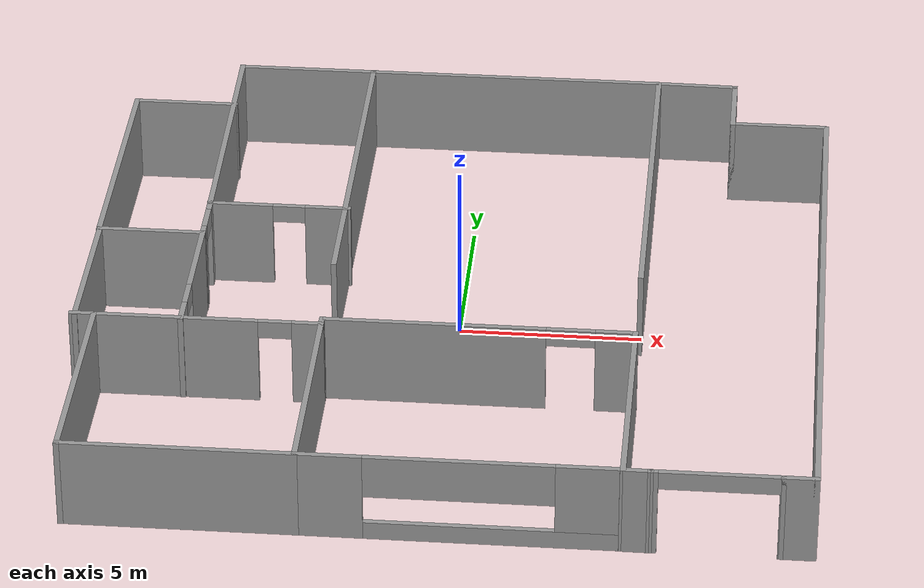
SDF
<?xml version='1.0'?>
<sdf version='1.7'>
  <model name='Silveroak-15(my_house)'>
    <pose>-0.115 -0.019862 0 0 -0 0</pose>
    <link name='Wall_10'>
      <collision name='Wall_10_Collision'>
        <geometry>
          <box>
            <size>10.75 0.15 2.5</size>
          </box>
        </geometry>
        <pose>0 0 1.25 0 -0 0</pose>
      </collision>
      <visual name='Wall_10_Visual'>
        <pose>0 0 1.25 0 -0 0</pose>
        <geometry>
          <box>
            <size>10.75 0.15 2.5</size>
          </box>
        </geometry>
        <material>
          <script>
            <uri>file://media/materials/scripts/gazebo.material</uri>
            <name>Gazebo/Grey</name>
          </script>
          <ambient>1 1 1 1</ambient>
        </material>
        <meta>
          <layer>0</layer>
        </meta>
      </visual>
      <pose>5.085 4.57986 0 0 -0 1.5708</pose>
    </link>
    <link name='Wall_16'>
      <collision name='Wall_16_Collision'>
        <geometry>
          <box>
            <size>6.5 0.15 2.5</size>
          </box>
        </geometry>
        <pose>0 0 1.25 0 -0 0</pose>
      </collision>
      <visual name='Wall_16_Visual'>
        <pose>0 0 1.25 0 -0 0</pose>
        <geometry>
          <box>
            <size>6.5 0.15 2.5</size>
          </box>
        </geometry>
        <material>
          <script>
            <uri>file://media/materials/scripts/gazebo.material</uri>
            <name>Gazebo/Grey</name>
          </script>
          <ambient>1 1 1 1</ambient>
        </material>
        <meta>
          <layer>0</layer>
        </meta>
      </visual>
      <pose>-3.275 -6.68514 0 0 -0 1.5708</pose>
    </link>
    <link name='Wall_18'>
      <pose>0.9 -9.86014 0 0 -0 0</pose>
      <visual name='Wall_18_Visual_0'>
        <pose>-3.3497 0 1.25 0 -0 0</pose>
        <geometry>
          <box>
            <size>1.80059 0.15 2.5</size>
          </box>
        </geometry>
        <material>
          <script>
            <uri>file://media/materials/scripts/gazebo.material</uri>
            <name>Gazebo/Grey</name>
          </script>
          <ambient>1 1 1 1</ambient>
        </material>
        <meta>
          <layer>0</layer>
        </meta>
      </visual>
      <collision name='Wall_18_Collision_0'>
        <geometry>
          <box>
            <size>1.80059 0.15 2.5</size>
          </box>
        </geometry>
        <pose>-3.3497 0 1.25 0 -0 0</pose>
      </collision>
      <visual name='Wall_18_Visual_1'>
        <pose>0.900296 0 0.25 0 -0 0</pose>
        <geometry>
          <box>
            <size>6.69941 0.15 0.5</size>
          </box>
        </geometry>
        <material>
          <script>
            <uri>file://media/materials/scripts/gazebo.material</uri>
            <name>Gazebo/Grey</name>
          </script>
          <ambient>1 1 1 1</ambient>
        </material>
        <meta>
          <layer>0</layer>
        </meta>
      </visual>
      <collision name='Wall_18_Collision_1'>
        <geometry>
          <box>
            <size>6.69941 0.15 0.5</size>
          </box>
        </geometry>
        <pose>0.900296 0 0.25 0 -0 0</pose>
      </collision>
      <visual name='Wall_18_Visual_2'>
        <pose>3.36028 0 1.5 0 -0 0</pose>
        <geometry>
          <box>
            <size>1.77943 0.15 2</size>
          </box>
        </geometry>
        <material>
          <script>
            <uri>file://media/materials/scripts/gazebo.material</uri>
            <name>Gazebo/Grey</name>
          </script>
          <ambient>1 1 1 1</ambient>
        </material>
        <meta>
          <layer>0</layer>
        </meta>
      </visual>
      <collision name='Wall_18_Collision_2'>
        <geometry>
          <box>
            <size>1.77943 0.15 2</size>
          </box>
        </geometry>
        <pose>3.36028 0 1.5 0 -0 0</pose>
      </collision>
      <visual name='Wall_18_Visual_3'>
        <pose>0.010579 0 1.9 0 -0 0</pose>
        <geometry>
          <box>
            <size>4.91998 0.15 1.2</size>
          </box>
        </geometry>
        <material>
          <script>
            <uri>file://media/materials/scripts/gazebo.material</uri>
            <name>Gazebo/Grey</name>
          </script>
          <ambient>1 1 1 1</ambient>
        </material>
        <meta>
          <layer>0</layer>
        </meta>
      </visual>
      <collision name='Wall_18_Collision_3'>
        <geometry>
          <box>
            <size>4.91998 0.15 1.2</size>
          </box>
        </geometry>
        <pose>0.010579 0 1.9 0 -0 0</pose>
      </collision>
    </link>
    <link name='Wall_20'>
      <pose>0.9 -3.51514 0 0 -0 3.14039</pose>
      <visual name='Wall_20_Visual_0'>
        <pose>-3.68142 0 1.25 0 -0 0</pose>
        <geometry>
          <box>
            <size>1.13717 0.15 2.5</size>
          </box>
        </geometry>
        <material>
          <script>
            <uri>file://media/materials/scripts/gazebo.material</uri>
            <name>Gazebo/Grey</name>
          </script>
          <ambient>1 1 1 1</ambient>
        </material>
        <meta>
          <layer>0</layer>
        </meta>
      </visual>
      <collision name='Wall_20_Collision_0'>
        <geometry>
          <box>
            <size>1.13717 0.15 2.5</size>
          </box>
        </geometry>
        <pose>-3.68142 0 1.25 0 -0 0</pose>
      </collision>
      <visual name='Wall_20_Visual_1'>
        <pose>1.22365 0 1.25 0 -0 0</pose>
        <geometry>
          <box>
            <size>6.05271 0.15 2.5</size>
          </box>
        </geometry>
        <material>
          <script>
            <uri>file://media/materials/scripts/gazebo.material</uri>
            <name>Gazebo/Grey</name>
          </script>
          <ambient>1 1 1 1</ambient>
        </material>
        <meta>
          <layer>0</layer>
        </meta>
      </visual>
      <collision name='Wall_20_Collision_1'>
        <geometry>
          <box>
            <size>6.05271 0.15 2.5</size>
          </box>
        </geometry>
        <pose>1.22365 0 1.25 0 -0 0</pose>
      </collision>
      <visual name='Wall_20_Visual_2'>
        <pose>-2.45777 0 2.25 0 -0 0</pose>
        <geometry>
          <box>
            <size>1.31012 0.15 0.5</size>
          </box>
        </geometry>
        <material>
          <script>
            <uri>file://media/materials/scripts/gazebo.material</uri>
            <name>Gazebo/Grey</name>
          </script>
          <ambient>1 1 1 1</ambient>
        </material>
        <meta>
          <layer>0</layer>
        </meta>
      </visual>
      <collision name='Wall_20_Collision_2'>
        <geometry>
          <box>
            <size>1.31012 0.15 0.5</size>
          </box>
        </geometry>
        <pose>-2.45777 0 2.25 0 -0 0</pose>
      </collision>
    </link>
    <link name='Wall_23'>
      <collision name='Wall_23_Collision'>
        <geometry>
          <box>
            <size>6.25 0.15 2.5</size>
          </box>
        </geometry>
        <pose>0 0 1.25 0 -0 0</pose>
      </collision>
      <visual name='Wall_23_Visual'>
        <pose>0 0 1.25 0 -0 0</pose>
        <geometry>
          <box>
            <size>6.25 0.15 2.5</size>
          </box>
        </geometry>
        <material>
          <script>
            <uri>file://media/materials/scripts/gazebo.material</uri>
            <name>Gazebo/Grey</name>
          </script>
          <ambient>1 1 1 1</ambient>
        </material>
        <meta>
          <layer>0</layer>
        </meta>
      </visual>
      <pose>-6.325 -9.86014 0 0 -0 3.14159</pose>
    </link>
    <link name='Wall_26'>
      <collision name='Wall_26_Collision'>
        <geometry>
          <box>
            <size>6.25 0.15 2.5</size>
          </box>
        </geometry>
        <pose>0 0 1.25 0 -0 0</pose>
      </collision>
      <visual name='Wall_26_Visual'>
        <pose>0 0 1.25 0 -0 0</pose>
        <geometry>
          <box>
            <size>6.25 0.15 2.5</size>
          </box>
        </geometry>
        <material>
          <script>
            <uri>file://media/materials/scripts/gazebo.material</uri>
            <name>Gazebo/Grey</name>
          </script>
          <ambient>1 1 1 1</ambient>
        </material>
        <meta>
          <layer>0</layer>
        </meta>
      </visual>
      <pose>-9.375 -6.81014 0 0 -0 1.5708</pose>
    </link>
    <link name='Wall_28'>
      <pose>-6.325 -3.76014 0 0 -0 0</pose>
      <visual name='Wall_28_Visual_0'>
        <pose>-0.8825 0 1.25 0 -0 0</pose>
        <geometry>
          <box>
            <size>4.485 0.15 2.5</size>
          </box>
        </geometry>
        <material>
          <script>
            <uri>file://media/materials/scripts/gazebo.material</uri>
            <name>Gazebo/Grey</name>
          </script>
          <ambient>1 1 1 1</ambient>
        </material>
        <meta>
          <layer>0</layer>
        </meta>
      </visual>
      <collision name='Wall_28_Collision_0'>
        <geometry>
          <box>
            <size>4.485 0.15 2.5</size>
          </box>
        </geometry>
        <pose>-0.8825 0 1.25 0 -0 0</pose>
      </collision>
      <visual name='Wall_28_Visual_1'>
        <pose>2.6925 0 1.25 0 -0 0</pose>
        <geometry>
          <box>
            <size>0.865 0.15 2.5</size>
          </box>
        </geometry>
        <material>
          <script>
            <uri>file://media/materials/scripts/gazebo.material</uri>
            <name>Gazebo/Grey</name>
          </script>
          <ambient>1 1 1 1</ambient>
        </material>
        <meta>
          <layer>0</layer>
        </meta>
      </visual>
      <collision name='Wall_28_Collision_1'>
        <geometry>
          <box>
            <size>0.865 0.15 2.5</size>
          </box>
        </geometry>
        <pose>2.6925 0 1.25 0 -0 0</pose>
      </collision>
      <visual name='Wall_28_Visual_2'>
        <pose>1.81 0 2.25 0 -0 0</pose>
        <geometry>
          <box>
            <size>0.9 0.15 0.5</size>
          </box>
        </geometry>
        <material>
          <script>
            <uri>file://media/materials/scripts/gazebo.material</uri>
            <name>Gazebo/Grey</name>
          </script>
          <ambient>1 1 1 1</ambient>
        </material>
        <meta>
          <layer>0</layer>
        </meta>
      </visual>
      <collision name='Wall_28_Collision_2'>
        <geometry>
          <box>
            <size>0.9 0.15 0.5</size>
          </box>
        </geometry>
        <pose>1.81 0 2.25 0 -0 0</pose>
      </collision>
    </link>
    <link name='Wall_31'>
      <collision name='Wall_31_Collision'>
        <geometry>
          <box>
            <size>10.75 0.15 2.5</size>
          </box>
        </geometry>
        <pose>0 0 1.25 0 -0 0</pose>
      </collision>
      <visual name='Wall_31_Visual'>
        <pose>0 0 1.25 0 -0 0</pose>
        <geometry>
          <box>
            <size>10.75 0.15 2.5</size>
          </box>
        </geometry>
        <material>
          <script>
            <uri>file://media/materials/scripts/gazebo.material</uri>
            <name>Gazebo/Grey</name>
          </script>
          <ambient>1 1 1 1</ambient>
        </material>
        <meta>
          <layer>0</layer>
        </meta>
      </visual>
      <pose>-3.265 4.57986 0 0 -0 1.5708</pose>
    </link>
    <link name='Wall_33'>
      <collision name='Wall_33_Collision'>
        <geometry>
          <box>
            <size>8.5 0.15 2.5</size>
          </box>
        </geometry>
        <pose>0 0 1.25 0 -0 0</pose>
      </collision>
      <visual name='Wall_33_Visual'>
        <pose>0 0 1.25 0 -0 0</pose>
        <geometry>
          <box>
            <size>8.5 0.15 2.5</size>
          </box>
        </geometry>
        <material>
          <script>
            <uri>file://media/materials/scripts/gazebo.material</uri>
            <name>Gazebo/Grey</name>
          </script>
          <ambient>1 1 1 1</ambient>
        </material>
        <meta>
          <layer>0</layer>
        </meta>
      </visual>
      <pose>0.91 9.87986 0 0 -0 0</pose>
    </link>
    <link name='Wall_36'>
      <collision name='Wall_36_Collision'>
        <geometry>
          <box>
            <size>7.25 0.15 2.5</size>
          </box>
        </geometry>
        <pose>0 0 1.25 0 -0 0</pose>
      </collision>
      <visual name='Wall_36_Visual'>
        <pose>0 0 1.25 0 -0 0</pose>
        <geometry>
          <box>
            <size>7.25 0.15 2.5</size>
          </box>
        </geometry>
        <material>
          <script>
            <uri>file://media/materials/scripts/gazebo.material</uri>
            <name>Gazebo/Grey</name>
          </script>
          <ambient>1 1 1 1</ambient>
        </material>
        <meta>
          <layer>0</layer>
        </meta>
      </visual>
      <pose>-9.905 4.09986 0 0 -0 -1.5708</pose>
    </link>
    <link name='Wall_39'>
      <collision name='Wall_39_Collision'>
        <geometry>
          <box>
            <size>0.16 0.15 2.5</size>
          </box>
        </geometry>
        <pose>0 0 1.25 0 -0 0</pose>
      </collision>
      <visual name='Wall_39_Visual'>
        <pose>0 0 1.25 0 -0 0</pose>
        <geometry>
          <box>
            <size>0.16 0.15 2.5</size>
          </box>
        </geometry>
        <material>
          <script>
            <uri>file://media/materials/scripts/gazebo.material</uri>
            <name>Gazebo/Grey</name>
          </script>
          <ambient>1 1 1 1</ambient>
        </material>
        <meta>
          <layer>0</layer>
        </meta>
      </visual>
      <pose>-7.04 2.15986 0 0 -0 0</pose>
    </link>
    <link name='Wall_4'>
      <collision name='Wall_4_Collision'>
        <geometry>
          <box>
            <size>1 0.15 2.5</size>
          </box>
        </geometry>
        <pose>0 0 1.25 0 -0 0</pose>
      </collision>
      <visual name='Wall_4_Visual'>
        <pose>0 0 1.25 0 -0 0</pose>
        <geometry>
          <box>
            <size>1 0.15 2.5</size>
          </box>
        </geometry>
        <material>
          <script>
            <uri>file://media/materials/scripts/gazebo.material</uri>
            <name>Gazebo/Grey</name>
          </script>
          <ambient>1 1 1 1</ambient>
        </material>
        <meta>
          <layer>0</layer>
        </meta>
      </visual>
      <pose>9.55 -9.88014 0 0 -0 3.14159</pose>
    </link>
    <link name='Wall_40'>
      <collision name='Wall_40_Collision'>
        <geometry>
          <box>
            <size>7.87041 0.15 2.5</size>
          </box>
        </geometry>
        <pose>0 0 1.25 0 -0 0</pose>
      </collision>
      <visual name='Wall_40_Visual'>
        <pose>0 0 1.25 0 -0 0</pose>
        <geometry>
          <box>
            <size>7.87041 0.15 2.5</size>
          </box>
        </geometry>
        <material>
          <script>
            <uri>file://media/materials/scripts/gazebo.material</uri>
            <name>Gazebo/Grey</name>
          </script>
          <ambient>1 1 1 1</ambient>
        </material>
        <meta>
          <layer>0</layer>
        </meta>
      </visual>
      <pose>-7.075 6.01986 0 0 -0 1.58116</pose>
    </link>
    <link name='Wall_43'>
      <collision name='Wall_43_Collision'>
        <geometry>
          <box>
            <size>4 0.15 2.5</size>
          </box>
        </geometry>
        <pose>0 0 1.25 0 -0 0</pose>
      </collision>
      <visual name='Wall_43_Visual'>
        <pose>0 0 1.25 0 -0 0</pose>
        <geometry>
          <box>
            <size>4 0.15 2.5</size>
          </box>
        </geometry>
        <material>
          <script>
            <uri>file://media/materials/scripts/gazebo.material</uri>
            <name>Gazebo/Grey</name>
          </script>
          <ambient>1 1 1 1</ambient>
        </material>
        <meta>
          <layer>0</layer>
        </meta>
      </visual>
      <pose>-5.19 9.87986 0 0 -0 3.14159</pose>
    </link>
    <link name='Wall_45'>
      <pose>-7.035 1.35986 0 0 -0 -1.5708</pose>
      <visual name='Wall_45_Visual_0'>
        <pose>-0.6575 0 1.25 0 -0 0</pose>
        <geometry>
          <box>
            <size>0.435 0.15 2.5</size>
          </box>
        </geometry>
        <material>
          <script>
            <uri>file://media/materials/scripts/gazebo.material</uri>
            <name>Gazebo/Grey</name>
          </script>
          <ambient>1 1 1 1</ambient>
        </material>
        <meta>
          <layer>0</layer>
        </meta>
      </visual>
      <collision name='Wall_45_Collision_0'>
        <geometry>
          <box>
            <size>0.435 0.15 2.5</size>
          </box>
        </geometry>
        <pose>-0.6575 0 1.25 0 -0 0</pose>
      </collision>
      <visual name='Wall_45_Visual_1'>
        <pose>0.6675 0 1.25 0 -0 0</pose>
        <geometry>
          <box>
            <size>0.415 0.15 2.5</size>
          </box>
        </geometry>
        <material>
          <script>
            <uri>file://media/materials/scripts/gazebo.material</uri>
            <name>Gazebo/Grey</name>
          </script>
          <ambient>1 1 1 1</ambient>
        </material>
        <meta>
          <layer>0</layer>
        </meta>
      </visual>
      <collision name='Wall_45_Collision_1'>
        <geometry>
          <box>
            <size>0.415 0.15 2.5</size>
          </box>
        </geometry>
        <pose>0.6675 0 1.25 0 -0 0</pose>
      </collision>
      <visual name='Wall_45_Visual_2'>
        <pose>0.01 0 2.25 0 -0 0</pose>
        <geometry>
          <box>
            <size>0.9 0.15 0.5</size>
          </box>
        </geometry>
        <material>
          <script>
            <uri>file://media/materials/scripts/gazebo.material</uri>
            <name>Gazebo/Grey</name>
          </script>
          <ambient>1 1 1 1</ambient>
        </material>
        <meta>
          <layer>0</layer>
        </meta>
      </visual>
      <collision name='Wall_45_Collision_2'>
        <geometry>
          <box>
            <size>0.9 0.15 0.5</size>
          </box>
        </geometry>
        <pose>0.01 0 2.25 0 -0 0</pose>
      </collision>
    </link>
    <link name='Wall_46'>
      <collision name='Wall_46_Collision'>
        <geometry>
          <box>
            <size>0.16 0.15 2.5</size>
          </box>
        </geometry>
        <pose>0 0 1.25 0 -0 0</pose>
      </collision>
      <visual name='Wall_46_Visual'>
        <pose>0 0 1.25 0 -0 0</pose>
        <geometry>
          <box>
            <size>0.16 0.15 2.5</size>
          </box>
        </geometry>
        <material>
          <script>
            <uri>file://media/materials/scripts/gazebo.material</uri>
            <name>Gazebo/Grey</name>
          </script>
          <ambient>1 1 1 1</ambient>
        </material>
        <meta>
          <layer>0</layer>
        </meta>
      </visual>
      <pose>-7.03 0.559862 0 0 -0 0</pose>
    </link>
    <link name='Wall_48'>
      <collision name='Wall_48_Collision'>
        <geometry>
          <box>
            <size>3 0.15 2.5</size>
          </box>
        </geometry>
        <pose>0 0 1.25 0 -0 0</pose>
      </collision>
      <visual name='Wall_48_Visual'>
        <pose>0 0 1.25 0 -0 0</pose>
        <geometry>
          <box>
            <size>3 0.15 2.5</size>
          </box>
        </geometry>
        <material>
          <script>
            <uri>file://media/materials/scripts/gazebo.material</uri>
            <name>Gazebo/Grey</name>
          </script>
          <ambient>1 1 1 1</ambient>
        </material>
        <meta>
          <layer>0</layer>
        </meta>
      </visual>
      <pose>-8.46 0.559862 0 0 -0 3.14159</pose>
    </link>
    <link name='Wall_49'>
      <collision name='Wall_49_Collision'>
        <geometry>
          <box>
            <size>4.5 0.15 2.5</size>
          </box>
        </geometry>
        <pose>0 0 1.25 0 -0 0</pose>
      </collision>
      <visual name='Wall_49_Visual'>
        <pose>0 0 1.25 0 -0 0</pose>
        <geometry>
          <box>
            <size>4.5 0.15 2.5</size>
          </box>
        </geometry>
        <material>
          <script>
            <uri>file://media/materials/scripts/gazebo.material</uri>
            <name>Gazebo/Grey</name>
          </script>
          <ambient>1 1 1 1</ambient>
        </material>
        <meta>
          <layer>0</layer>
        </meta>
      </visual>
      <pose>-9.885 -1.61514 0 0 -0 -1.5708</pose>
    </link>
    <link name='Wall_5'>
      <pose>7.45 -9.88014 0 0 -0 3.14159</pose>
      <visual name='Wall_5_Visual_0'>
        <pose>-1.69 0 1.25 0 -0 0</pose>
        <geometry>
          <box>
            <size>0.12 0.15 2.5</size>
          </box>
        </geometry>
        <material>
          <script>
            <uri>file://media/materials/scripts/gazebo.material</uri>
            <name>Gazebo/Grey</name>
          </script>
          <ambient>1 1 1 1</ambient>
        </material>
        <meta>
          <layer>0</layer>
        </meta>
      </visual>
      <collision name='Wall_5_Collision_0'>
        <geometry>
          <box>
            <size>0.12 0.15 2.5</size>
          </box>
        </geometry>
        <pose>-1.69 0 1.25 0 -0 0</pose>
      </collision>
      <visual name='Wall_5_Visual_1'>
        <pose>1.615 0 1.25 0 -0 0</pose>
        <geometry>
          <box>
            <size>0.27 0.15 2.5</size>
          </box>
        </geometry>
        <material>
          <script>
            <uri>file://media/materials/scripts/gazebo.material</uri>
            <name>Gazebo/Grey</name>
          </script>
          <ambient>1 1 1 1</ambient>
        </material>
        <meta>
          <layer>0</layer>
        </meta>
      </visual>
      <collision name='Wall_5_Collision_1'>
        <geometry>
          <box>
            <size>0.27 0.15 2.5</size>
          </box>
        </geometry>
        <pose>1.615 0 1.25 0 -0 0</pose>
      </collision>
      <visual name='Wall_5_Visual_2'>
        <pose>-0.075 0 2.25 0 -0 0</pose>
        <geometry>
          <box>
            <size>3.11 0.15 0.5</size>
          </box>
        </geometry>
        <material>
          <script>
            <uri>file://media/materials/scripts/gazebo.material</uri>
            <name>Gazebo/Grey</name>
          </script>
          <ambient>1 1 1 1</ambient>
        </material>
        <meta>
          <layer>0</layer>
        </meta>
      </visual>
      <collision name='Wall_5_Collision_2'>
        <geometry>
          <box>
            <size>3.11 0.15 0.5</size>
          </box>
        </geometry>
        <pose>-0.075 0 2.25 0 -0 0</pose>
      </collision>
    </link>
    <link name='Wall_51'>
      <collision name='Wall_51_Collision'>
        <geometry>
          <box>
            <size>0.75 0.15 2.5</size>
          </box>
        </geometry>
        <pose>0 0 1.25 0 -0 0</pose>
      </collision>
      <visual name='Wall_51_Visual'>
        <pose>0 0 1.25 0 -0 0</pose>
        <geometry>
          <box>
            <size>0.75 0.15 2.5</size>
          </box>
        </geometry>
        <material>
          <script>
            <uri>file://media/materials/scripts/gazebo.material</uri>
            <name>Gazebo/Grey</name>
          </script>
          <ambient>1 1 1 1</ambient>
        </material>
        <meta>
          <layer>0</layer>
        </meta>
      </visual>
      <pose>-9.675 -3.76014 0 0 -0 0</pose>
    </link>
    <link name='Wall_53'>
      <pose>-7.035 -1.61514 0 0 -0 -1.5708</pose>
      <visual name='Wall_53_Visual_0'>
        <pose>-0.8775 0 1.25 0 -0 0</pose>
        <geometry>
          <box>
            <size>2.745 0.15 2.5</size>
          </box>
        </geometry>
        <material>
          <script>
            <uri>file://media/materials/scripts/gazebo.material</uri>
            <name>Gazebo/Grey</name>
          </script>
          <ambient>1 1 1 1</ambient>
        </material>
        <meta>
          <layer>0</layer>
        </meta>
      </visual>
      <collision name='Wall_53_Collision_0'>
        <geometry>
          <box>
            <size>2.745 0.15 2.5</size>
          </box>
        </geometry>
        <pose>-0.8775 0 1.25 0 -0 0</pose>
      </collision>
      <visual name='Wall_53_Visual_1'>
        <pose>1.8225 0 1.25 0 -0 0</pose>
        <geometry>
          <box>
            <size>0.855 0.15 2.5</size>
          </box>
        </geometry>
        <material>
          <script>
            <uri>file://media/materials/scripts/gazebo.material</uri>
            <name>Gazebo/Grey</name>
          </script>
          <ambient>1 1 1 1</ambient>
        </material>
        <meta>
          <layer>0</layer>
        </meta>
      </visual>
      <collision name='Wall_53_Collision_1'>
        <geometry>
          <box>
            <size>0.855 0.15 2.5</size>
          </box>
        </geometry>
        <pose>1.8225 0 1.25 0 -0 0</pose>
      </collision>
      <visual name='Wall_53_Visual_2'>
        <pose>0.945 0 2.25 0 -0 0</pose>
        <geometry>
          <box>
            <size>0.9 0.15 0.5</size>
          </box>
        </geometry>
        <material>
          <script>
            <uri>file://media/materials/scripts/gazebo.material</uri>
            <name>Gazebo/Grey</name>
          </script>
          <ambient>1 1 1 1</ambient>
        </material>
        <meta>
          <layer>0</layer>
        </meta>
      </visual>
      <collision name='Wall_53_Collision_2'>
        <geometry>
          <box>
            <size>0.9 0.15 0.5</size>
          </box>
        </geometry>
        <pose>0.945 0 2.25 0 -0 0</pose>
      </collision>
    </link>
    <link name='Wall_55'>
      <pose>-5.11 2.15986 0 0 -0 0</pose>
      <visual name='Wall_55_Visual_0'>
        <pose>-1.0875 0 1.25 0 -0 0</pose>
        <geometry>
          <box>
            <size>1.825 0.15 2.5</size>
          </box>
        </geometry>
        <material>
          <script>
            <uri>file://media/materials/scripts/gazebo.material</uri>
            <name>Gazebo/Grey</name>
          </script>
          <ambient>1 1 1 1</ambient>
        </material>
        <meta>
          <layer>0</layer>
        </meta>
      </visual>
      <collision name='Wall_55_Collision_0'>
        <geometry>
          <box>
            <size>1.825 0.15 2.5</size>
          </box>
        </geometry>
        <pose>-1.0875 0 1.25 0 -0 0</pose>
      </collision>
      <visual name='Wall_55_Visual_1'>
        <pose>1.3625 0 1.25 0 -0 0</pose>
        <geometry>
          <box>
            <size>1.275 0.15 2.5</size>
          </box>
        </geometry>
        <material>
          <script>
            <uri>file://media/materials/scripts/gazebo.material</uri>
            <name>Gazebo/Grey</name>
          </script>
          <ambient>1 1 1 1</ambient>
        </material>
        <meta>
          <layer>0</layer>
        </meta>
      </visual>
      <collision name='Wall_55_Collision_1'>
        <geometry>
          <box>
            <size>1.275 0.15 2.5</size>
          </box>
        </geometry>
        <pose>1.3625 0 1.25 0 -0 0</pose>
      </collision>
      <visual name='Wall_55_Visual_2'>
        <pose>0.275 0 2.25 0 -0 0</pose>
        <geometry>
          <box>
            <size>0.9 0.15 0.5</size>
          </box>
        </geometry>
        <material>
          <script>
            <uri>file://media/materials/scripts/gazebo.material</uri>
            <name>Gazebo/Grey</name>
          </script>
          <ambient>1 1 1 1</ambient>
        </material>
        <meta>
          <layer>0</layer>
        </meta>
      </visual>
      <collision name='Wall_55_Collision_2'>
        <geometry>
          <box>
            <size>0.9 0.15 0.5</size>
          </box>
        </geometry>
        <pose>0.275 0 2.25 0 -0 0</pose>
      </collision>
    </link>
    <link name='Wall_57'>
      <collision name='Wall_57_Collision'>
        <geometry>
          <box>
            <size>3 0.15 2.5</size>
          </box>
        </geometry>
        <pose>0 0 1.25 0 -0 0</pose>
      </collision>
      <visual name='Wall_57_Visual'>
        <pose>0 0 1.25 0 -0 0</pose>
        <geometry>
          <box>
            <size>3 0.15 2.5</size>
          </box>
        </geometry>
        <material>
          <script>
            <uri>file://media/materials/scripts/gazebo.material</uri>
            <name>Gazebo/Grey</name>
          </script>
          <ambient>1 1 1 1</ambient>
        </material>
        <meta>
          <layer>0</layer>
        </meta>
      </visual>
      <pose>-8.48 7.64986 0 0 -0 0</pose>
    </link>
    <link name='Wall_6'>
      <collision name='Wall_6_Collision'>
        <geometry>
          <box>
            <size>0.850071 0.15 2.5</size>
          </box>
        </geometry>
        <pose>0 0 1.25 0 -0 0</pose>
      </collision>
      <visual name='Wall_6_Visual'>
        <pose>0 0 1.25 0 -0 0</pose>
        <geometry>
          <box>
            <size>0.850071 0.15 2.5</size>
          </box>
        </geometry>
        <material>
          <script>
            <uri>file://media/materials/scripts/gazebo.material</uri>
            <name>Gazebo/Grey</name>
          </script>
          <ambient>1 1 1 1</ambient>
        </material>
        <meta>
          <layer>0</layer>
        </meta>
      </visual>
      <pose>5.425 -9.87514 0 0 -0 3.12731</pose>
    </link>
    <link name='Wall_60'>
      <collision name='Wall_60_Collision'>
        <geometry>
          <box>
            <size>2.25 0.15 2.5</size>
          </box>
        </geometry>
        <pose>0 0 1.25 0 -0 0</pose>
      </collision>
      <visual name='Wall_60_Visual'>
        <pose>0 0 1.25 0 -0 0</pose>
        <geometry>
          <box>
            <size>2.25 0.15 2.5</size>
          </box>
        </geometry>
        <material>
          <script>
            <uri>file://media/materials/scripts/gazebo.material</uri>
            <name>Gazebo/Grey</name>
          </script>
          <ambient>1 1 1 1</ambient>
        </material>
        <meta>
          <layer>0</layer>
        </meta>
      </visual>
      <pose>7.305 8.78986 0 0 -0 1.5708</pose>
    </link>
    <link name='Wall_62'>
      <collision name='Wall_62_Collision'>
        <geometry>
          <box>
            <size>2.75 0.15 2.5</size>
          </box>
        </geometry>
        <pose>0 0 1.25 0 -0 0</pose>
      </collision>
      <visual name='Wall_62_Visual'>
        <pose>0 0 1.25 0 -0 0</pose>
        <geometry>
          <box>
            <size>2.75 0.15 2.5</size>
          </box>
        </geometry>
        <material>
          <script>
            <uri>file://media/materials/scripts/gazebo.material</uri>
            <name>Gazebo/Grey</name>
          </script>
          <ambient>1 1 1 1</ambient>
        </material>
        <meta>
          <layer>0</layer>
        </meta>
      </visual>
      <pose>8.605 7.73986 0 0 -0 0</pose>
    </link>
    <link name='Wall_64'>
      <collision name='Wall_64_Collision'>
        <geometry>
          <box>
            <size>2.37036 0.15 2.5</size>
          </box>
        </geometry>
        <pose>0 0 1.25 0 -0 0</pose>
      </collision>
      <visual name='Wall_64_Visual'>
        <pose>0 0 1.25 0 -0 0</pose>
        <geometry>
          <box>
            <size>2.37036 0.15 2.5</size>
          </box>
        </geometry>
        <material>
          <script>
            <uri>file://media/materials/scripts/gazebo.material</uri>
            <name>Gazebo/Grey</name>
          </script>
          <ambient>1 1 1 1</ambient>
        </material>
        <meta>
          <layer>0</layer>
        </meta>
      </visual>
      <pose>6.195 9.85986 0 0 -0 3.12358</pose>
    </link>
    <link name='Wall_66'>
      <collision name='Wall_66_Collision'>
        <geometry>
          <box>
            <size>17.75 0.15 2.5</size>
          </box>
        </geometry>
        <pose>0 0 1.25 0 -0 0</pose>
      </collision>
      <visual name='Wall_66_Visual'>
        <pose>0 0 1.25 0 -0 0</pose>
        <geometry>
          <box>
            <size>17.75 0.15 2.5</size>
          </box>
        </geometry>
        <material>
          <script>
            <uri>file://media/materials/scripts/gazebo.material</uri>
            <name>Gazebo/Grey</name>
          </script>
          <ambient>1 1 1 1</ambient>
        </material>
        <meta>
          <layer>0</layer>
        </meta>
      </visual>
      <pose>9.975 -1.08014 0 0 -0 1.5708</pose>
    </link>
    <link name='Wall_8'>
      <collision name='Wall_8_Collision'>
        <geometry>
          <box>
            <size>6.5 0.15 2.5</size>
          </box>
        </geometry>
        <pose>0 0 1.25 0 -0 0</pose>
      </collision>
      <visual name='Wall_8_Visual'>
        <pose>0 0 1.25 0 -0 0</pose>
        <geometry>
          <box>
            <size>6.5 0.15 2.5</size>
          </box>
        </geometry>
        <material>
          <script>
            <uri>file://media/materials/scripts/gazebo.material</uri>
            <name>Gazebo/Grey</name>
          </script>
          <ambient>1 1 1 1</ambient>
        </material>
        <meta>
          <layer>0</layer>
        </meta>
      </visual>
      <pose>5.075 -6.69514 0 0 -0 1.5708</pose>
    </link>
    <static>1</static>
  </model>
</sdf>
